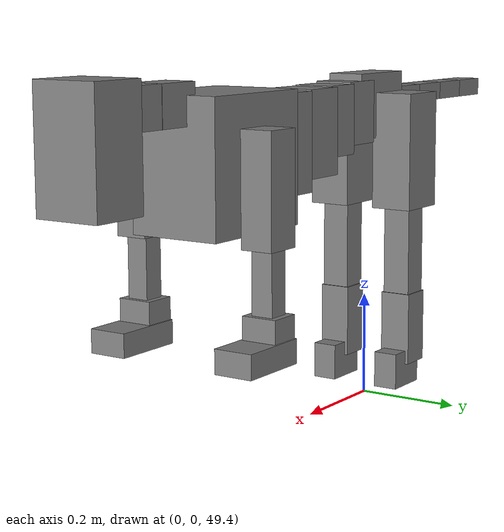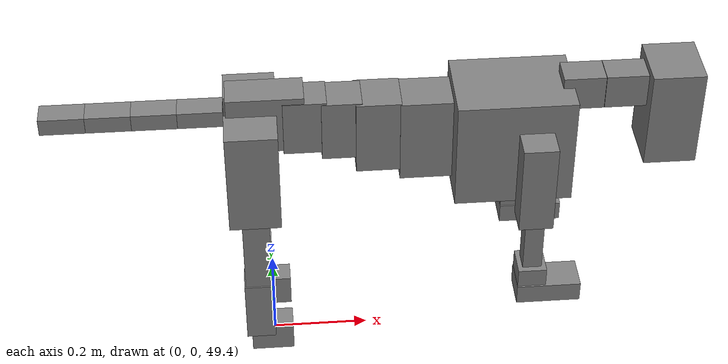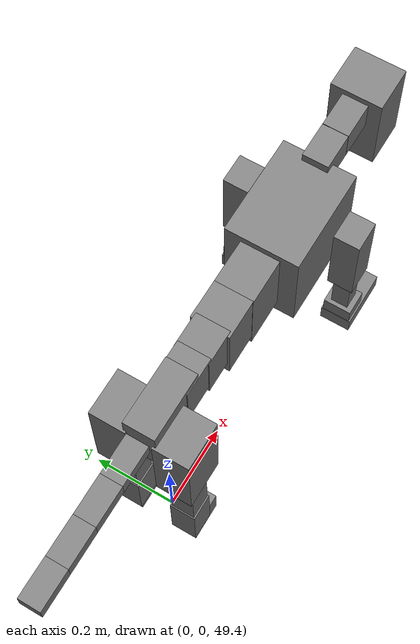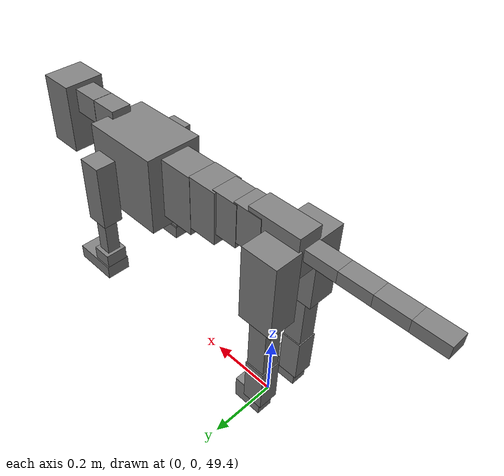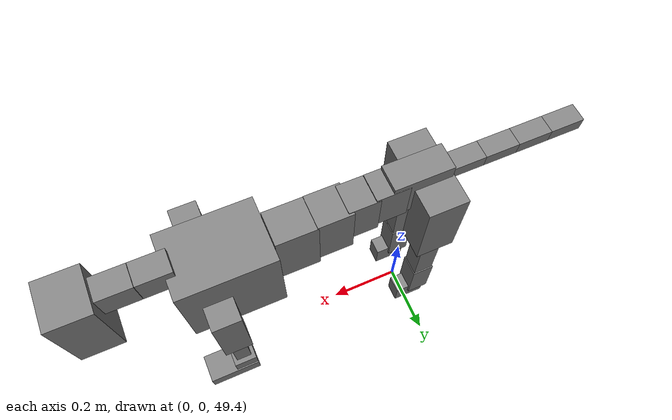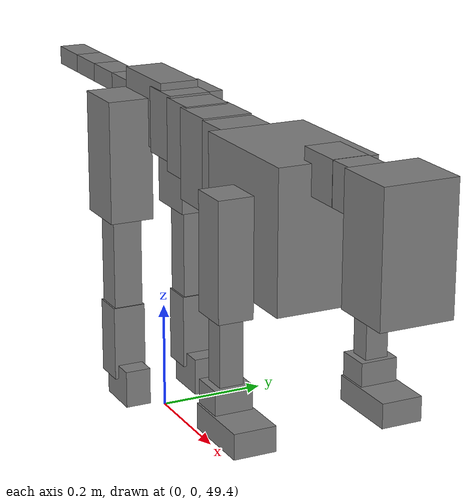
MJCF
<mujoco model="dog">

    <default>
        <joint armature="0.02" stiffness="1" damping="0.2" limited="true"/>
        <geom condim="3" friction="1 0.05 0.05" margin="0.01"/>
        <motor ctrllimited="true" ctrlrange="-1.0 1.0" forcelimited="true" gear="50"/>
    </default>

    <compiler inertiafromgeom="true" angle="radian"/>

    <option timestep="0.016" iterations="50" tolerance="1e-10" solver="Newton" jacobian="dense" cone="pyramidal"/>

    <size nconmax="20000" njmax="60000" nstack="5000000"/>
    <visual>
        <map force="0.1" zfar="30"/>
        <rgba haze="0.15 0.25 0.35 1"/>
        <quality shadowsize="2048"/>
        <global offwidth="800" offheight="800"/>
    </visual>

    <asset>
        <texture type="skybox" builtin="gradient" rgb1="0.3 0.5 0.7" rgb2="0 0 0" width="512" height="512"/>
        <texture name="texplane" type="2d" builtin="checker" rgb1=".2 .3 .4" rgb2=".1 0.15 0.2" width="512" height="512"
                 mark="cross" markrgb=".8 .8 .8"/>
        <texture name="texgeom" type="cube" builtin="flat" mark="cross" width="127" height="1278" rgb1="0.8 0.6 0.4"
                 rgb2="0.8 0.6 0.4" markrgb="1 1 1" random="0.01"/>

        <material name="matplane" reflectance="0.3" texture="texplane" texrepeat="1 1" texuniform="true"/>
        <material name="matgeom" texture="texgeom" texuniform="true" rgba="0.8 0.6 .4 1"/>
    </asset>

    <worldbody>
        <geom name="floor" pos="0 0 0" size="0 0 .25" type="plane" material="matplane" condim="3"/>

        <light directional="false" diffuse=".2 .2 .2" specular="0 0 0" pos="0 0 5" dir="0 0 -1" castshadow="false"/>
        <light mode="targetbodycom" target="torso" directional="false" diffuse=".8 .8 .8" specular="0.3 0.3 0.3"
               pos="0 0 4.0" dir="0 0 -1"/>

        <body name="root" pos="0 0 50">
            <freejoint name="root_1"/>
            <geom type="box" pos="0 0 -0.02" size="0.0774  0.0358  0.063" density="2030"/>

            <body name="spine1" pos="0.054 0 0">
                <joint name="spine1_y" axis="0 1 0" range="0 0.7" limited="true"/>
                <geom type="box" pos="0.02375 0 -0.03" size="0.04375  0.0375  0.05985" density="2030"/>

                <body name="spine2" pos="0.0612 0 0">
                    <joint name="spine2_y" axis="0 1 0" range="-0.15 0.15" limited="true"/>
                    <geom type="box" pos="0.03555  0  -0.04" size="0.04055  0.039  0.06615" density="2030"/>

                    <body name="spine3" pos="0.0730 0 0">
                        <joint name="spine3_y" axis="0 1 0" range="-0.15 0.15" limited="true"/>
                        <geom type="box" pos="0.03555  0  -0.057" size="0.04555  0.0445  0.081" density="2030"/>

                        <body name="spine4" pos="0.0780 0 0">
                            <joint name="spine4_y" axis="0 1 0" range="-0.15 0.15" limited="true"/>
                            <geom type="box" pos="0.05265  0  -0.07" size="0.05265  0.045  0.09135" density="2030"/>

                            <body name="torso" pos="0.1082 0 0">
                                <joint name="torso_y" axis="0 1 0" range="-0.15 0.15" limited="true"/>
                                <geom type="box" pos="0.11925  0  -0.085" size="0.11925  0.085  0.11745"
                                      density="2030"/>

                                <body name="neck1" pos="0.2160  0   0.0180">
                                    <joint name="neck1_y" axis="0 1 0" range="-1.2  -1" limited="true"/>
                                    <geom type="box" pos="0.0423  0  0" size="0.0423  0.03  0.036" density="2325"/>

                                    <body name="neck2" pos="0.0853  0  0">
                                        <joint name="neck2_y" axis="0 1 0" range="0.1  0" limited="true"/>
                                        <geom type="box" pos="0.0423  0  0" size="0.0423  0.03  0.036" density="2325"/>

                                        <body name="head" pos="0.0853  0  0">
                                            <joint name="head_y" axis="0 1 0" range="-0.3  -0.2" limited="true"/>
                                            <geom type="box" pos="0.0531  0  -0.055" size="0.0531  0.06  0.1044"
                                                  density="4030"/>

                                        </body>
                                    </body>
                                </body>

                                <body name="front_shoulder" pos="0.156  0   -0.0480">
                                    <joint name="front_shoulder_y" axis="0 1 0" range="-1 1.5" limited="true"/>
                                    <geom type="box" pos="0 0.13 -0.0716" size="0.0347  0.0296  0.0982" density="1158"/>
                                    <geom type="box" pos="0 -0.13 -0.0716" size="0.0347  0.0296  0.0982"
                                          density="1158"/>

                                    <body name="front_elbow" pos="0  0  -0.1431">
                                        <joint name="front_elbow_y" axis="0 1 0" range="-2 0" limited="true"/>
                                        <geom type="box" pos="0 0.13 -0.0751" size="0.0195  0.0200  0.0751"
                                              density="1081"/>
                                        <geom type="box" pos="0 -0.13 -0.0751" size="0.0195  0.0200  0.0751"
                                              density="1081"/>

                                        <body name="front_wrist" pos="0  0  -0.1502">
                                            <joint name="front_wrist_y" axis="0 1 0" range="-0.2 0" limited="true"/>
                                            <geom type="box" pos="0 0.13 -0.0212" size="0.0291  0.0324  0.0344"
                                                  density="1664"/>
                                            <geom type="box" pos="0 -0.13 -0.0212" size="0.0291  0.0324  0.0344"
                                                  density="1664"/>

                                            <body name="front_finger_end" pos="0  0  -0.0425">
                                                <joint name="front_finger_y" axis="0 1 0" range="-0.4 1"
                                                       limited="true"/>
                                                <geom type="box" pos="0.0358  0.13  -0.0063"
                                                      size="0.0657  0.0358  0.0213" density="1515"/>
                                                <geom type="box" pos="0.0358  -0.13  -0.0063"
                                                      size="0.0657  0.0358  0.0213" density="1515"/>

                                            </body>

                                        </body>
                                    </body>
                                </body>

                            </body>
                        </body>
                    </body>
                </body>
            </body>

            <body name="back_hip" pos="-0.03 0 -0.018">
                <joint name="back_hip_y" axis="0 1 0" range="-1.5 0.3" limited="true"/>
                <geom type="box" pos="0 0.07 -0.0897" size="0.0523  0.0410  0.1125" density="1154"/>
                <geom type="box" pos="0 -0.07 -0.0897" size="0.0523  0.0410  0.1125" density="1154"/>

                <body name="back_knee" pos="0  0  -0.1794">
                    <joint name="back_knee_y" axis="0 1 0" range="0 2.8" limited="true"/>
                    <geom type="box" pos="0 0.07 -0.1022" size="0.0276  0.0272  0.1178" density="1227"/>
                    <geom type="box" pos="0 -0.07 -0.1022" size="0.0276  0.0272  0.1178" density="1227"/>

                    <body name="back_ankle" pos="0  0  -0.2044">
                        <joint name="back_ankle_y" axis="0 1 0" range="-2.2 0" limited="true"/>
                        <geom type="box" pos="0 0.07 -0.0587" size="0.0303  0.0303  0.0700" density="1284"/>
                        <geom type="box" pos="0 -0.07 -0.0587" size="0.0303  0.0303  0.0700" density="1284"/>

                        <body name="back_toe_end" pos="0  0  -0.1175">
                            <joint name="back_toe_y" axis="0 1 0" range="-0.4 1" limited="true"/>
                            <geom type="box" pos="0.0239  0.07  -0.0199" size="0.0439  0.0239  0.0349" density="1515"/>
                            <geom type="box" pos="0.0239  -0.07  -0.0199" size="0.0439  0.0239  0.0349" density="1515"/>

                        </body>
                    </body>
                </body>
            </body>

            <body name="tail1" pos="-0.074 0 -0.006">
                <joint name="tail1_y" axis="0 1 0" range="-0.2 0.2" limited="true"/>
                <geom type="box" pos="-0.0536  0  0" size="0.045  0.025  0.0175" density="1587"/>

                <body name="tail2" pos="-0.09 0 0">
                    <joint name="tail2_y" axis="0 1 0" range="-0.2 0.2" limited="true"/>
                    <geom type="box" pos="-0.0536  0  0" size="0.045  0.025  0.0175" density="1587"/>

                    <body name="tail3" pos="-0.09 0 0">
                        <joint name="tail3_y" axis="0 1 0" range="-0.2 0.2" limited="true"/>
                        <geom type="box" pos="-0.0536  0  0" size="0.045  0.025  0.0175" density="1587"/>

                        <body name="tail4" pos="-0.09 0 0">
                            <joint name="tail4_y" axis="0 1 0" range="-0.2 0.2" limited="true"/>
                            <geom type="box" pos="-0.0536  0  0" size="0.045  0.025  0.0175" density="1587"/>

                        </body>
                    </body>
                </body>
            </body>
        </body>
    </worldbody>

    <actuator>
        <motor joint="spine1_y" forcerange="-150 150     "/>
        <motor joint="spine2_y" forcerange="-150 150     "/>
        <motor joint="spine3_y" forcerange="-150 150     "/>
        <motor joint="spine4_y" forcerange="-150 150     "/>
        <motor joint="torso_y" forcerange="-150 150     "/>
        <motor joint="neck1_y" forcerange="-100 100       "/>
        <motor joint="neck2_y" forcerange="-100 100       "/>
        <motor joint="head_y" forcerange="-150 150       "/>
        <motor joint="front_shoulder_y" forcerange="-124.80 172.85"/>
        <motor joint="front_elbow_y" forcerange="-108.18 137.15"/>
        <motor joint="front_wrist_y" forcerange="-142.54 116.48"/>
        <motor joint="front_finger_y" forcerange="-57.68 93.43"/>
        <motor joint="back_hip_y" forcerange="-367.01 379.57"/>
        <motor joint="back_knee_y" forcerange="-246.28 349.58"/>
        <motor joint="back_angle_y" forcerange="-141.74 243.33"/>
        <motor joint="back_toe_y" forcerange="-62.63 48.96"/>
        <motor joint="tail1_y" forcerange="-50 50     "/>
        <motor joint="tail2_y" forcerange="-50 50     "/>
        <motor joint="tail3_y" forcerange="-50 50     "/>
        <motor joint="tail4_y" forcerange="-50 50     "/>
    </actuator>
</mujoco>
